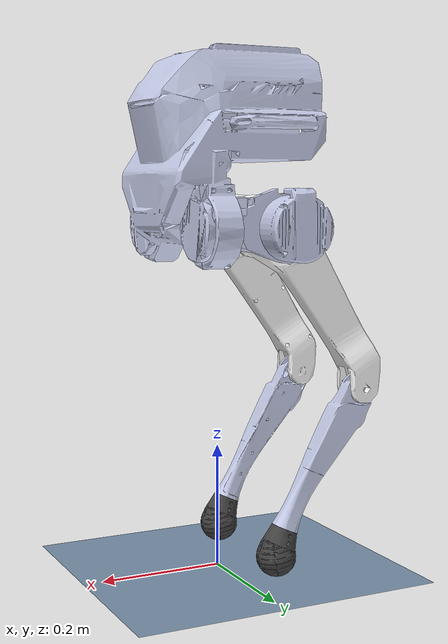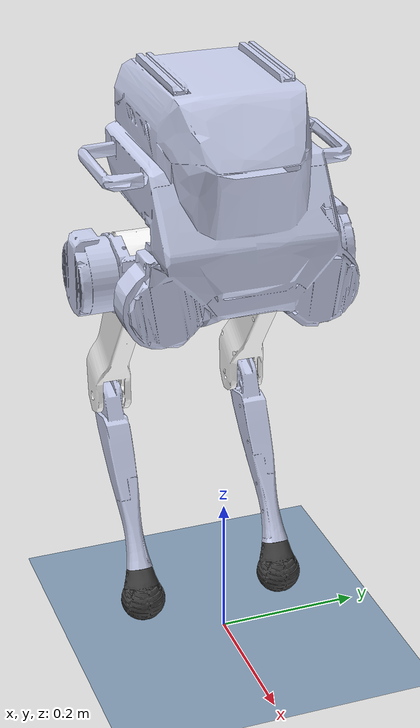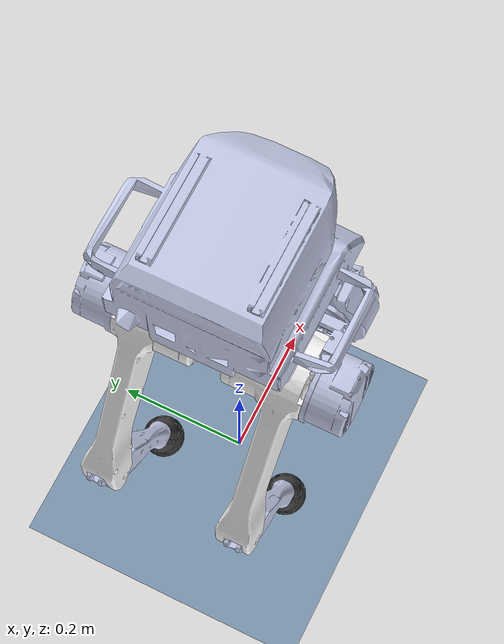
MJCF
<mujoco model="pointfoot">
    <compiler angle="radian" meshdir="../meshes/" />
    <size njmax="500" nconmax="100" />

    <default>
        <light castshadow="false" diffuse="1 1 1" />
        <camera fovy="60"/>
        <default class="visual">
            <geom contype="0" conaffinity="0" group="1" type="mesh" rgba="0.9 0.9 0.9 1.0"/>
        </default>
        <joint armature="0.01" damping="0.01"/>
        <geom contype="1" conaffinity="1" condim="3" friction="0.6 0.005 0.0001" rgba="0.5 0.6 0.7 0.0" margin="0.001" group="0" />
    </default>
    <visual>
        <rgba com="0.502 1.0 0 0.5" contactpoint="1.0 1.0 0.6 0.4" contactforce="0.2 0.98 0.2 0.8"/>
        <scale com="0.2" forcewidth="0.05" contactwidth="0.10" contactheight="0.04"/>
    </visual>

    <asset>  # 引用
        <mesh name="base_Link" file="base_Link_.stl" />
        <mesh name="abad_L_Link" file="abad_L_Link_.stl" />
        <mesh name="hip_L_Link" file="hip_L_Link_.stl" />
        <mesh name="knee_L_Link" file="knee_L_Link_.stl" />
        <mesh name="foot_L_Link" file="foot_L_Link_.stl" />
        <mesh name="abad_R_Link" file="abad_R_Link_.stl" />
        <mesh name="hip_R_Link" file="hip_R_Link_.stl" />
        <mesh name="knee_R_Link" file="knee_R_Link_.stl" />
        <mesh name="foot_R_Link" file="foot_R_Link_.stl" />
    </asset>

    <asset>
        <texture type='skybox' builtin='gradient' width='512' height='512' rgb1="1.0 1.0 1.0" rgb2="1.0 1.0 1.0"/>
        <texture name="texplane" type="2d" builtin="checker" rgb1="0.35 0.35 0.35" rgb2="0.55 0.55 0.55" width="512" height="512" mark="cross" markrgb=".8 .8 .8"/>
        <material name="matplane" reflectance="0.0" texture="texplane" texrepeat="1 1" texuniform="true"/>
    </asset>
        <option timestep="0.001"/>

    <worldbody>   #用于定义仿真世界中的所有物体和机器人结构
        <geom name="floor" rgba="0.5 0.6 0.7 1" pos="0 0 0" size="0 0 0.25" type="plane" material="matplane" condim="3"/>
        <camera name="track" mode="trackcom" pos="0 -2.3 1.6" xyaxes="1 0 0 0 0.707 0.707"/>
        <light directional="true" diffuse=".8 .8 .8" pos="0 0 10" dir="0 0 -10"/>

        <body name="base_Link" pos="0 0 0.65">
            <inertial pos="0.0124578 0.00015983 0.0024464" quat="0.970019 0.00567349 -0.242946 0.00285921" mass="9.427" diaginertia="0.151998 0.109274 0.0799176" />  #inertial 为惯性属性
            <joint type="free" limited="false" damping="0.0000" stiffness="0.0000" armature="0"/>
            <site name="imu" pos="0 0 0"/>
            <geom class="visual" rgba="0.79216 0.81961 0.93333 1" mesh="base_Link" />
            <geom name="base_collision" size="0.1325 0.13 0.09" pos="0 0 0.1" type="box" rgba="0 0 1 0"/>

            <body name="abad_L_Link" pos="0.02376 0.105 -0.0938">  #相对与其父base的坐标系
                <inertial pos="-0.069561 0.044266 0.000691" quat="0.59523 0.576026 0.401757 0.390496" mass="1.48" diaginertia="0.00252254 0.00206107 0.0013935" />  #重心位置相对于局部坐标系
                <joint name="abad_L_Joint" pos="0 0 0" axis="1 0 0" limited="true" range="-0.38397 1.39626" />
                <geom class="visual" rgba="0.79216 0.81961 0.93333 1" mesh="abad_L_Link" />
                <geom name="abad_L_collision" size="0.05 0.025" pos="-0.08 0 0" quat="0.707388 0.706825 0 0" type="cylinder" rgba="0 0 1 0" />

                <body name="hip_L_Link" pos="-0.077 0.0205 0">
                    <inertial pos="-0.02819 -0.047565 -0.039447" quat="0.829148 0.203367 0.217364 0.47319" mass="2.257" diaginertia="0.0233339 0.0230357 0.00269373" />
                    <joint name="hip_L_Joint" pos="0 0 0" axis="0 1 0" limited="true" range="-1.01229 1.39626" />
                    <geom class="visual" rgba="1 1 1 1" mesh="hip_L_Link" />
                    <geom name="hip_L_collision" size="0.035 0.09" pos="-0.1 -0.02 -0.14" quat="0.965093 0 0.261909 0" type="cylinder" rgba="0 0 1 0" />

                    <body name="knee_L_Link" pos="-0.15 -0.0205 -0.25981">
                        <inertial pos="0.0771498 0.00111167 -0.126772" quat="0.666731 -0.193525 -0.183017 0.696077" mass="0.730001" diaginertia="0.00970745 0.00963304 0.000230446" />
                        <joint name="knee_L_Joint" pos="0 0 0" axis="0 -1 0" limited="true" range="-0.872665 1.36136" />
                        <geom class="visual" rgba="0.79216 0.81961 0.93333 1" mesh="knee_L_Link" />
                        <geom name="knee_L_collision" size="0.015 0.13" pos="0.078 0 -0.12" quat="0.962425 0 -0.271547 0" type="cylinder" rgba="0 0 1 0"/>

                        <geom class="visual" pos="0.150 0 -0.2598" rgba="0.26667 0.26667 0.26667 1" mesh="foot_L_Link" />
                        <geom name="foot_L_collision" type="sphere" pos="0.150 0 -0.2598" size="0.032" rgba="0 0 1 0" />
                    </body>
                </body>
            </body>

            <body name="abad_R_Link" pos="0.02376 -0.105 -0.0938">
                <inertial pos="-0.069561 -0.044266 0.000691" quat="0.390496 0.401757 0.576026 0.59523" mass="1.56" diaginertia="0.00252254 0.00206107 0.0013935" />
                <joint name="abad_R_Joint" pos="0 0 0" axis="1 0 0" limited="true" range="-1.39626 0.38397" />
                <geom class="visual" rgba="0.79216 0.81961 0.93333 1" mesh="abad_R_Link" />
                <geom name="abad_R_collision" size="0.05 0.025" pos="-0.08 0 0" quat="0.707388 0.706825 0 0" type="cylinder" rgba="0 0 1 0" />

                <body name="hip_R_Link" pos="-0.077 -0.0205 0">
                    <inertial pos="-0.02819 0.047565 -0.039447" quat="0.47319 0.217364 0.203367 0.829148" mass="2.257" diaginertia="0.0233339 0.0230357 0.00269373" />
                    <joint name="hip_R_Joint" pos="0 0 0" axis="0 -1 0" limited="true" range="-1.39626 1.01229" />
                    <geom class="visual" rgba="1 1 1 1" mesh="hip_R_Link" />
                    <geom name="hip_R_collision" size="0.035 0.09" pos="-0.1 0.02 -0.14" quat="0.965093 0 0.261909 0" type="cylinder" rgba="0 0 1 0" />

                    <body name="knee_R_Link" pos="-0.15 0.0205 -0.25981">
                        <inertial pos="0.0788284 -0.00108562 -0.129755" quat="0.695998 -0.183173 -0.19362 0.666742" mass="0.684001" diaginertia="0.00958026 0.00950594 0.000230352" />
                        <joint name="knee_R_Joint" pos="0 0 0" axis="0 1 0" limited="true" range="-1.36136 0.872665" />
                        <geom class="visual" rgba="0.79216 0.81961 0.93333 1" mesh="knee_R_Link" />
                        <geom name="knee_R_collision" size="0.015 0.13" pos="0.078 0 -0.12" quat="0.962425 0 -0.271547 0" type="cylinder" rgba="0 0 1 0"/>

                        <geom class="visual" pos="0.150 0 -0.2598" rgba="0.26667 0.26667 0.26667 1" mesh="foot_R_Link" />
                        <geom name="foot_R_collision" type="sphere" pos="0.150 0 -0.2598" size="0.032" rgba="0 0 1 0" />
                    </body>
                </body>
            </body>
        </body>
    </worldbody>

    <actuator>
        <motor name="abad_L_Joint"  gear="1"  joint="abad_L_Joint" ctrllimited='true' ctrlrange='-80 80'/>
        <motor name="hip_L_Joint"   gear="1"  joint="hip_L_Joint" ctrllimited='true' ctrlrange='-80 80'/>
        <motor name="knee_L_Joint"  gear="1"  joint="knee_L_Joint" ctrllimited='true' ctrlrange='-80 80'/>
        <motor name="abad_R_Joint"  gear="1"  joint="abad_R_Joint" ctrllimited='true' ctrlrange='-80 80' />
        <motor name="hip_R_Joint"   gear="1"  joint="hip_R_Joint" ctrllimited='true' ctrlrange='-80 80' />
        <motor name="knee_R_Joint"  gear="1"  joint="knee_R_Joint" ctrllimited='true' ctrlrange='-80 80'/>
    </actuator>

    <sensor>
        <framequat name="quat" objtype="site" objname="imu"/>
        <gyro name="gyro" site="imu"/>
        <accelerometer name="acc" site="imu"/>
        <jointpos name="abad_L_Joint"    joint="abad_L_Joint" />
        <jointpos name="hip_L_Joint"     joint="hip_L_Joint" />
        <jointpos name="knee_L_Joint"    joint="knee_L_Joint" />
        <jointpos name="abad_R_Joint"    joint="abad_R_Joint" />
        <jointpos name="hip_R_Joint"     joint="hip_R_Joint" />
        <jointpos name="knee_R_Joint"    joint="knee_R_Joint" />
    </sensor>

</mujoco>
